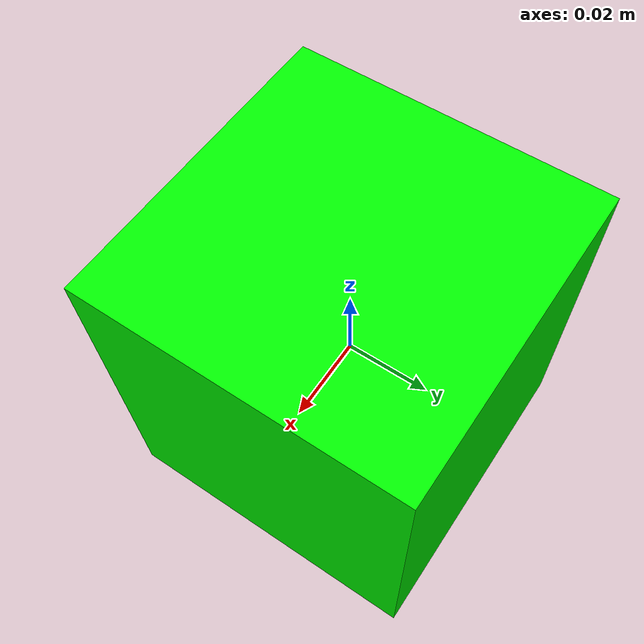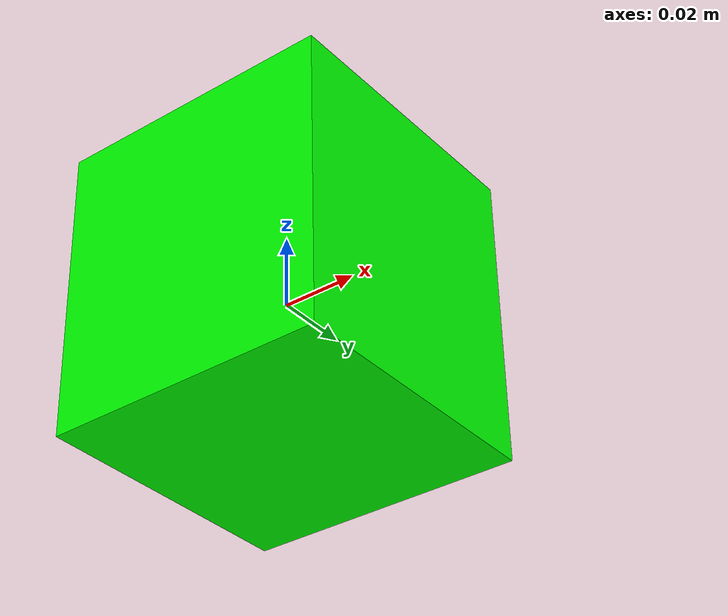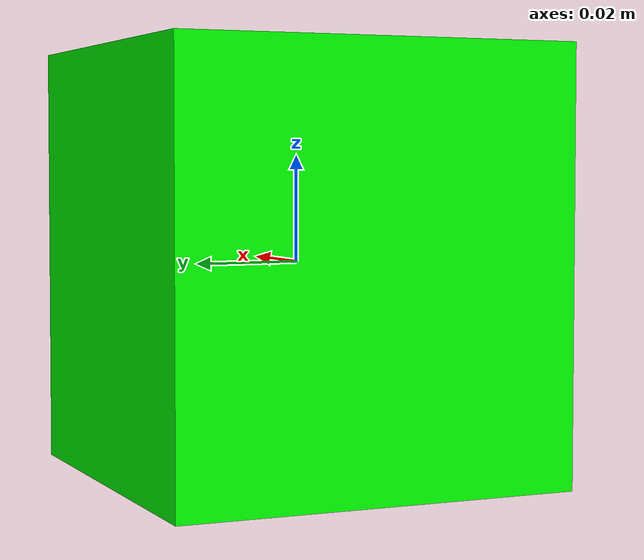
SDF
<?xml version="1.0" ?>
<sdf version="1.9">
  <model name="attached_mass">
    <pose>0 0 0.0 0 0 0</pose>
    <link name="attached_mass_link">
      <inertial>
        <pose>0 0 0 0 0 0</pose>
        <mass>0.50</mass>
        <inertia>
          <ixx>5.0104e-04</ixx>
          <iyy>5.0104e-04</iyy>
          <izz>4.6875e-04</izz>
          <ixy>0</ixy>
          <ixz>0</ixz>
          <iyz>0</iyz>
        </inertia>
      </inertial>
      <collision name="attached_mass_collision">
        <pose>0 0 0 0 0 0</pose>
        <geometry>
          <box>
            <size>0.075 0.075 0.08</size>
          </box>
        </geometry>
      </collision>
      <visual name="attached_mass_visual">
        <pose>0 0 0 0 0 0</pose>
        <geometry>
          <box>
            <size>0.075 0.075 0.08</size>
          </box>
        </geometry>
        <material>
          <ambient>0 1 0 1</ambient>
          <diffuse>0 1 0 1</diffuse>
        </material>
      </visual>
    </link>
  </model>
</sdf>
